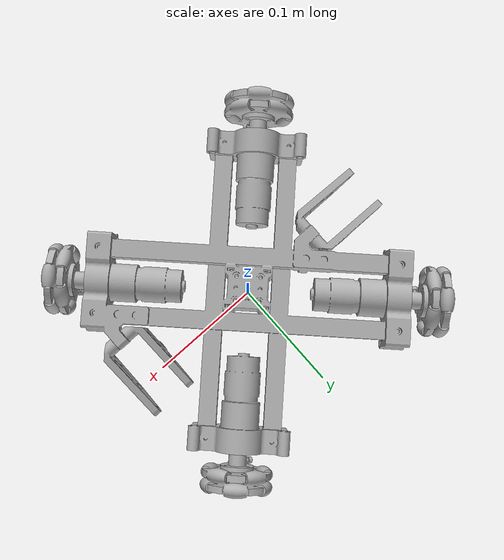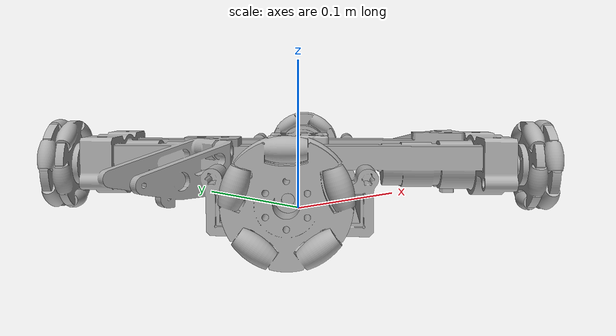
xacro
<?xml version="1.0"?>
<robot name="lecture" xmlns:xacro="http://www.ros.org/wiki/xacro">

  <xacro:include filename="$(find lecture_description)/urdf/materials.xacro" />
  <xacro:include filename="$(find lecture_description)/urdf/lecture.trans" />
  <xacro:include filename="$(find lecture_description)/urdf/lecture.gazebo" />

  <link name="base_footprint" />
  <joint name="base_link_joint" type="fixed">
    <parent link="base_footprint" />
    <child link="base_link" />
    <origin xyz="0 0 0.03" rpy="0 0 0" />
  </joint>

  <link name="base_link">
    <inertial>
      <origin xyz="-0.0012605599502361578 -8.917576403608184e-06 0.0005433686973854139" rpy="0 0 0" />
      <mass value="3.826300119883122" />
      <inertia ixx="0.018527" iyy="0.019477" izz="0.037328" ixy="-0.001432" iyz="-1e-06" ixz="3e-05" />
    </inertial>
    <visual>
      <origin xyz="0 0 0" rpy="0 0 2.356194" />
      <geometry>
        <mesh filename="file://$(find lecture_description)/meshes/base_link.stl"
          scale="0.001 0.001 0.001" />
      </geometry>
      <material name="silver" />
    </visual>
    <collision>
      <origin xyz="0 0 0" rpy="0 0 2.356194" />
      <geometry>
        <mesh filename="file://$(find lecture_description)/meshes/base_link.stl"
          scale="0.001 0.001 0.001" />
      </geometry>
    </collision>
  </link>

  <link name="left_forward_link">
    <inertial>
      <origin xyz="1.8326052827203112e-05 -0.006393049420570535 -1.0580551516706431e-05" rpy="0 0 0" />
      <mass value="0.31089484227593567" />
      <inertia ixx="8e-05" iyy="0.000133" izz="8e-05" ixy="-0.0" iyz="0.0" ixz="0.0" />
    </inertial>
    <visual>
      <origin xyz="0.0 0.1493 -0.0" rpy="0 0 0" />
      <geometry>
        <mesh filename="file://$(find lecture_description)/meshes/left_forward_link.stl"
          scale="0.001 0.001 0.001" />
      </geometry>
      <material name="silver" />
    </visual>
    <collision>
      <origin xyz="0.0 0.1493 -0.0" rpy="0 0 0" />
      <geometry>
        <mesh filename="file://$(find lecture_description)/meshes/left_forward_link.stl"
          scale="0.001 0.001 0.001" />
      </geometry>
    </collision>
  </link>

  <link name="left_backward_link">
    <inertial>
      <origin xyz="0.006393049420570396 1.832605277156058e-05 -1.0580551543025885e-05" rpy="0 0 0" />
      <mass value="0.31089484227593484" />
      <inertia ixx="0.000133" iyy="8e-05" izz="8e-05" ixy="0.0" iyz="0.0" ixz="-0.0" />
    </inertial>
    <visual>
      <origin xyz="-0.1493 -0.0 -0.0" rpy="0 0 0" />
      <geometry>
        <mesh filename="file://$(find lecture_description)/meshes/left_backward_link.stl"
          scale="0.001 0.001 0.001" />
      </geometry>
      <material name="silver" />
    </visual>
    <collision>
      <origin xyz="-0.1493 -0.0 -0.0" rpy="0 0 0" />
      <geometry>
        <mesh filename="file://$(find lecture_description)/meshes/left_backward_link.stl"
          scale="0.001 0.001 0.001" />
      </geometry>
    </collision>
  </link>

  <link name="right_forward_link">
    <inertial>
      <origin xyz="-0.006393049420570424 -1.8326052827223946e-05 -1.0580551516692069e-05"
        rpy="0 0 0" />
      <mass value="0.31089484227593595" />
      <inertia ixx="0.000133" iyy="8e-05" izz="8e-05" ixy="0.0" iyz="-0.0" ixz="0.0" />
    </inertial>
    <visual>
      <origin xyz="0.1493 -0.0 -0.0" rpy="0 0 0" />
      <geometry>
        <mesh filename="file://$(find lecture_description)/meshes/right_forward_link.stl"
          scale="0.001 0.001 0.001" />
      </geometry>
      <material name="silver" />
    </visual>
    <collision>
      <origin xyz="0.1493 -0.0 -0.0" rpy="0 0 0" />
      <geometry>
        <mesh filename="file://$(find lecture_description)/meshes/right_forward_link.stl"
          scale="0.001 0.001 0.001" />
      </geometry>
    </collision>
  </link>

  <link name="right_backward_link">
    <inertial>
      <origin xyz="-1.8326052771614796e-05 0.00639304942057034 -1.0580551543079707e-05" rpy="0 0 0" />
      <mass value="0.3108948422759349" />
      <inertia ixx="8e-05" iyy="0.000133" izz="8e-05" ixy="-0.0" iyz="-0.0" ixz="-0.0" />
    </inertial>
    <visual>
      <origin xyz="-0.0 -0.1493 -0.0" rpy="0 0 0" />
      <geometry>
        <mesh filename="file://$(find lecture_description)/meshes/right_backward_link.stl"
          scale="0.001 0.001 0.001" />
      </geometry>
      <material name="silver" />
    </visual>
    <collision>
      <origin xyz="-0.0 -0.1493 -0.0" rpy="0 0 0" />
      <geometry>
        <mesh filename="file://$(find lecture_description)/meshes/right_backward_link.stl"
          scale="0.001 0.001 0.001" />
      </geometry>
    </collision>
  </link>

  <joint name="left_forward_joint" type="continuous">
    <origin xyz="0.106 0.106 0.0" rpy="0 0 2.356194" />
    <parent link="base_link" />
    <child link="left_forward_link" />
    <axis xyz="0 -1 0" />
  </joint>

  <joint name="left_backward_joint" type="continuous">
    <origin xyz="-0.106 0.106 0.0" rpy="0 0 2.356194" />
    <parent link="base_link" />
    <child link="left_backward_link" />
    <axis xyz="1 0 0" />
  </joint>

  <joint name="right_backward_joint" type="continuous">
    <origin xyz="-0.106 -0.106 0.0" rpy="0 0 2.356194" />
    <parent link="base_link" />
    <child link="right_backward_link" />
    <axis xyz="0 1 0" />
  </joint>

  <joint name="right_forward_joint" type="continuous">
    <origin xyz="0.106 -0.106 0.0" rpy="0 0 2.356194" />
    <parent link="base_link" />
    <child link="right_forward_link" />
    <axis xyz="-1 0 0" />
  </joint>

  <link name="imu_link">
    <inertial>
      <mass value="0.01" />
      <origin xyz="0 0 0" rpy="0 0 0" />
      <inertia ixx="1e-6" ixy="0" ixz="0" iyy="1e-6" iyz="0" izz="1e-6" />
    </inertial>
  </link>

  <joint name="imu_joint" type="fixed">
    <parent link="base_link" />
    <child link="imu_link" />
    <origin xyz="0 0 0.05" rpy="0 0 0" />
  </joint>

  <link name="base_scan">
    <inertial>
      <origin xyz="0 0 4" rpy="0 0 0" />
      <mass value="0.1" />
      <inertia ixx="1e-6" ixy="0" ixz="0" iyy="1e-6" iyz="0" izz="1e-6" />
    </inertial>
  </link>

  <joint name="lidar_joint" type="fixed">
    <parent link="base_link" />
    <child link="base_scan" />
    <origin xyz="0 0 0.05" rpy="0 0 0" />
  </joint>

  <ros2_control name="GazeboSimSystem" type="system">
    <hardware>
      <plugin>gz_ros2_control/GazeboSimSystem</plugin>
    </hardware>
    <joint name="left_forward_joint">
      <command_interface name="velocity">
        <param name="min">-6</param>
        <param name="max">6</param>
      </command_interface>
      <state_interface name="position">
        <param name="initial_value">0.0</param>
      </state_interface>
      <state_interface name="velocity" />
      <state_interface name="effort" />
    </joint>
    <joint name="right_forward_joint">
      <command_interface name="velocity">
        <param name="min">-6</param>
        <param name="max">6</param>
      </command_interface>
      <state_interface name="position">
        <param name="initial_value">0.0</param>
      </state_interface>
      <state_interface name="velocity" />
      <state_interface name="effort" />
    </joint>
    <joint name="left_backward_joint">
      <command_interface name="velocity">
        <param name="min">-6</param>
        <param name="max">6</param>
      </command_interface>
      <state_interface name="position">
        <param name="initial_value">0.0</param>
      </state_interface>
      <state_interface name="velocity" />
      <state_interface name="effort" />
    </joint>
    <joint name="right_backward_joint">
      <command_interface name="velocity">
        <param name="min">-6</param>
        <param name="max">6</param>
      </command_interface>
      <state_interface name="position">
        <param name="initial_value">0.0</param>
      </state_interface>
      <state_interface name="velocity" />
      <state_interface name="effort" />
    </joint>
  </ros2_control>

</robot>

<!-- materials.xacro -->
<robot name="lecture" xmlns:xacro="http://www.ros.org/wiki/xacro">

  <material name="silver">
    <color rgba="0.700 0.700 0.700 1.000" />
  </material>

</robot>

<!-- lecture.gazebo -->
<robot name="lecture" xmlns:xacro="http://www.ros.org/wiki/xacro">

  <xacro:property name="body_color" value="Gazebo/Silver" />

  <gazebo>
    <plugin
      filename="gz-sim-velocity-control-system"
      name="gz::sim::systems::VelocityControl">
      <topic>cmd_vel</topic>
      <initial_linear>0 0 0</initial_linear>
      <initial_angular>0 0 0</initial_angular>
    </plugin>

    <plugin
      filename="gz-sim-odometry-publisher-system"
      name="gz::sim::systems::OdometryPublisher">
      <odom_frame>odom</odom_frame>
      <robot_base_frame>base_footprint</robot_base_frame>
      <odom_topic>/odom</odom_topic>
      <tf_topic>/tf</tf_topic>
      <gaussian_noise>0.01</gaussian_noise>
      <odom_publish_frequency>50.0</odom_publish_frequency>
    </plugin>

    <plugin filename="gz-sim-imu-system"
      name="gz::sim::systems::Imu">
    </plugin>
    <plugin
      filename="gz-sim-sensors-system"
      name="gz::sim::systems::Sensors">
      <render_engine>ogre2</render_engine>
    </plugin>
  </gazebo>

  <gazebo reference="base_link">
    <material>${body_color}</material>
    <mu1>1.5</mu1>
    <mu2>1.5</mu2>
    <self_collide>true</self_collide>
    <gravity>true</gravity>
  </gazebo>

  <gazebo reference="left_forward_link">
    <material>${body_color}</material>
    <mu1>1.0</mu1>
    <mu2>0.001</mu2>
    <self_collide>true</self_collide>
  </gazebo>

  <gazebo reference="left_backward_link">
    <material>${body_color}</material>
    <mu1>1.0</mu1>
    <mu2>0.001</mu2>
    <self_collide>true</self_collide>
  </gazebo>

  <gazebo reference="right_forward_link">
    <material>${body_color}</material>
    <mu1>1.0</mu1>
    <mu2>0.001</mu2>
    <self_collide>true</self_collide>
  </gazebo>

  <gazebo reference="right_backward_link">
    <material>${body_color}</material>
    <mu1>1.0</mu1>
    <mu2>0.001</mu2>
    <self_collide>true</self_collide>
  </gazebo>

  <gazebo reference="imu_link">
    <sensor name="imu_sensor" type="imu">
      <always_on>1</always_on>
      <update_rate>10</update_rate>
      <visualize>true</visualize>
      <topic>imu</topic>
      <gz_frame_id>imu_link</gz_frame_id>
    </sensor>
  </gazebo>
  <gazebo reference="base_scan">
    <sensor name='gpu_lidar' type='gpu_lidar'>" <gz_frame_id>base_scan</gz_frame_id>
    <topic>scan</topic>
    <update_rate>
      10</update_rate>
    <ray>
        <scan>
          <horizontal>
            <samples>640</samples>
            <resolution>1</resolution>
            <min_angle>-3.14</min_angle>
            <max_angle>3.14</max_angle>
          </horizontal>
          <vertical>
            <samples>1</samples>
            <resolution>0.01</resolution>
            <min_angle>0</min_angle>
            <max_angle>0</max_angle>
          </vertical>
        </scan>
        <range>
          <min>0.08</min>
          <max>10.0</max>
          <resolution>0.01</resolution>
        </range>
      </ray>
    <always_on>1</always_on>
    <visualize>
      true</visualize>
     <intensity>
        <visualize>true</visualize>
        <enabled>true</enabled>
        <topic>intensity</topic>
      </intensity>
    </sensor>
  </gazebo>

</robot>
